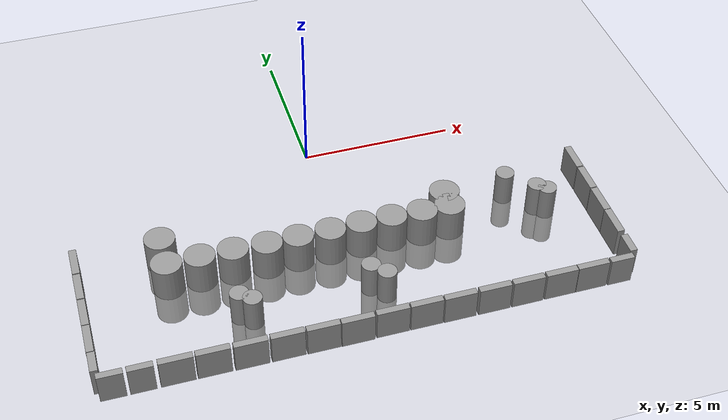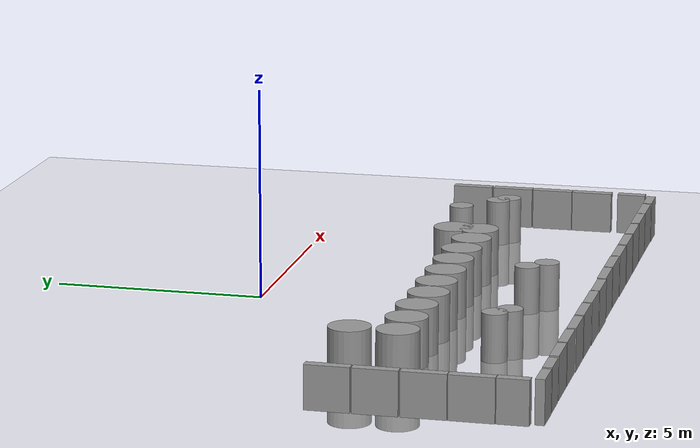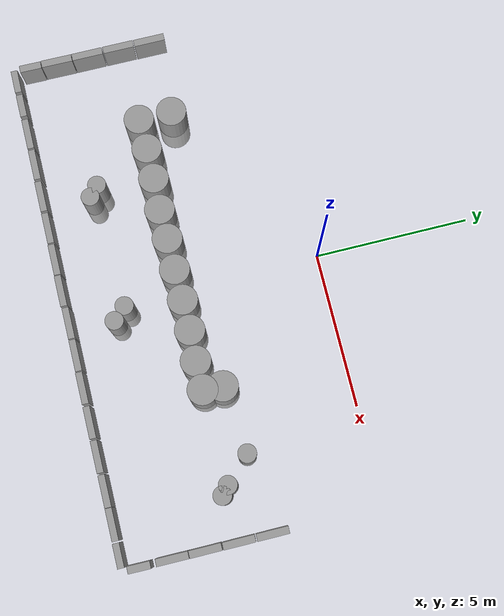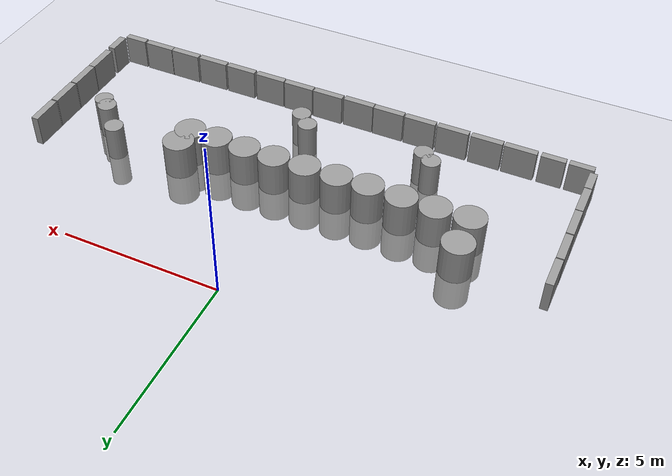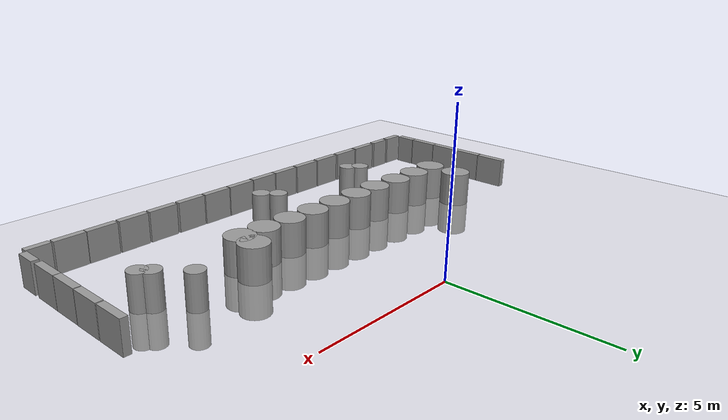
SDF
<sdf version="1.6">
 <world name="default">
  <model name="ground_plane">
   <static>1</static>
   <static>1</static>
   <link name="link">
    <collision name="collision">
     <geometry><plane><normal>0 0 1</normal><size>100 100</size></plane></geometry>
     <surface><friction><ode><mu>100</mu><mu2>50</mu2></ode></friction></surface>
    </collision>
    <visual name="visual">
     <cast_shadows>0</cast_shadows>
     <geometry><plane><normal>0 0 1</normal><size>100 100</size></plane></geometry>
     <material>
      <script><uri>file://media/materials/scripts/gazebo.material</uri><name>Gazebo/Grey</name></script>
     </material>
    </visual>
   </link>
  </model>
  <model name="unit_box_0_clone_10">
   <pose>8.12331 -3.52224 0.5 0 -0 0.000152</pose>
   <link name="link">
    <inertial>
     <mass>1</mass>
     <inertia>
      <ixx>0.166667</ixx>
      <ixy>0</ixy>
      <ixz>0</ixz>
      <iyy>0.166667</iyy>
      <iyz>0</iyz>
      <izz>0.166667</izz>
     </inertia>
    </inertial>
    <collision name="collision"><geometry><box><size>0.230819 1 1</size></box></geometry></collision>
    <visual name="visual">
     <geometry><box><size>0.230819 1 1</size></box></geometry>
     <material>
      <script><name>Gazebo/Grey</name><uri>file://media/materials/scripts/gazebo.material</uri></script>
     </material>
    </visual>
   </link>
  </model>
  <model name="unit_box_0_clone_11">
   <pose>8.1233 -4.56317 0.5 0 -0 0.000152</pose>
   <link name="link">
    <inertial>
     <mass>1</mass>
     <inertia>
      <ixx>0.166667</ixx>
      <ixy>0</ixy>
      <ixz>0</ixz>
      <iyy>0.166667</iyy>
      <iyz>0</iyz>
      <izz>0.166667</izz>
     </inertia>
    </inertial>
    <collision name="collision"><geometry><box><size>0.230819 1 1</size></box></geometry></collision>
    <visual name="visual">
     <geometry><box><size>0.230819 1 1</size></box></geometry>
     <material>
      <script><name>Gazebo/Grey</name><uri>file://media/materials/scripts/gazebo.material</uri></script>
     </material>
    </visual>
   </link>
  </model>
  <model name="unit_box_0_clone_12">
   <pose>8.11815 -5.59379 0.5 0 -0 0.000152</pose>
   <link name="link">
    <inertial>
     <mass>1</mass>
     <inertia>
      <ixx>0.166667</ixx>
      <ixy>0</ixy>
      <ixz>0</ixz>
      <iyy>0.166667</iyy>
      <iyz>0</iyz>
      <izz>0.166667</izz>
     </inertia>
    </inertial>
    <collision name="collision"><geometry><box><size>0.230819 1 1</size></box></geometry></collision>
    <visual name="visual">
     <geometry><box><size>0.230819 1 1</size></box></geometry>
     <material>
      <script><name>Gazebo/Grey</name><uri>file://media/materials/scripts/gazebo.material</uri></script>
     </material>
    </visual>
   </link>
  </model>
  <model name="unit_box_0_clone_13">
   <pose>8.11333 -6.60775 0.5 1e-06 -1e-06 -0.005519</pose>
   <link name="link">
    <inertial>
     <mass>1</mass>
     <inertia>
      <ixx>0.166667</ixx>
      <ixy>0</ixy>
      <ixz>0</ixz>
      <iyy>0.166667</iyy>
      <iyz>0</iyz>
      <izz>0.166667</izz>
     </inertia>
    </inertial>
    <collision name="collision"><geometry><box><size>0.230819 1 1</size></box></geometry></collision>
    <visual name="visual">
     <geometry><box><size>0.230819 1 1</size></box></geometry>
     <material>
      <script><name>Gazebo/Grey</name><uri>file://media/materials/scripts/gazebo.material</uri></script>
     </material>
    </visual>
   </link>
  </model>
  <model name="unit_box_clone_15_clone_0">
   <pose>6.71207 -8.13122 0.499998 0 5e-06 0.000244</pose>
   <link name="link">
    <inertial>
     <mass>1</mass>
     <inertia>
      <ixx>0.166667</ixx>
      <ixy>0</ixy>
      <ixz>0</ixz>
      <iyy>0.166667</iyy>
      <iyz>0</iyz>
      <izz>0.166667</izz>
     </inertia>
    </inertial>
    <collision name="collision"><geometry><box><size>1 0.210541 1</size></box></geometry></collision>
    <visual name="visual">
     <geometry><box><size>1 0.210541 1</size></box></geometry>
     <material>
      <script><name>Gazebo/Grey</name><uri>file://media/materials/scripts/gazebo.material</uri></script>
     </material>
    </visual>
   </link>
  </model>
  <model name="unit_box_clone_15_clone_1">
   <pose>5.69715 -8.13121 0.499998 0 5e-06 0.000244</pose>
   <link name="link">
    <inertial>
     <mass>1</mass>
     <inertia>
      <ixx>0.166667</ixx>
      <ixy>0</ixy>
      <ixz>0</ixz>
      <iyy>0.166667</iyy>
      <iyz>0</iyz>
      <izz>0.166667</izz>
     </inertia>
    </inertial>
    <collision name="collision"><geometry><box><size>1 0.210541 1</size></box></geometry></collision>
    <visual name="visual">
     <geometry><box><size>1 0.210541 1</size></box></geometry>
     <material>
      <script><name>Gazebo/Grey</name><uri>file://media/materials/scripts/gazebo.material</uri></script>
     </material>
    </visual>
   </link>
  </model>
  <model name="unit_box_clone_15_clone_2">
   <pose>4.63881 -8.13739 0.499998 0 5e-06 0.000244</pose>
   <link name="link">
    <inertial>
     <mass>1</mass>
     <inertia>
      <ixx>0.166667</ixx>
      <ixy>0</ixy>
      <ixz>0</ixz>
      <iyy>0.166667</iyy>
      <iyz>0</iyz>
      <izz>0.166667</izz>
     </inertia>
    </inertial>
    <collision name="collision"><geometry><box><size>1 0.210541 1</size></box></geometry></collision>
    <visual name="visual">
     <geometry><box><size>1 0.210541 1</size></box></geometry>
     <material>
      <script><name>Gazebo/Grey</name><uri>file://media/materials/scripts/gazebo.material</uri></script>
     </material>
    </visual>
   </link>
  </model>
  <model name="unit_box_clone_15_clone_3">
   <pose>3.57975 -8.13739 0.499998 0 5e-06 0.000244</pose>
   <link name="link">
    <inertial>
     <mass>1</mass>
     <inertia>
      <ixx>0.166667</ixx>
      <ixy>0</ixy>
      <ixz>0</ixz>
      <iyy>0.166667</iyy>
      <iyz>0</iyz>
      <izz>0.166667</izz>
     </inertia>
    </inertial>
    <collision name="collision"><geometry><box><size>1 0.210541 1</size></box></geometry></collision>
    <visual name="visual">
     <geometry><box><size>1 0.210541 1</size></box></geometry>
     <material>
      <script><name>Gazebo/Grey</name><uri>file://media/materials/scripts/gazebo.material</uri></script>
     </material>
    </visual>
   </link>
  </model>
  <model name="unit_box_clone_15_clone_4">
   <pose>2.49815 -8.13738 0.499998 0 5e-06 0.000244</pose>
   <link name="link">
    <inertial>
     <mass>1</mass>
     <inertia>
      <ixx>0.166667</ixx>
      <ixy>0</ixy>
      <ixz>0</ixz>
      <iyy>0.166667</iyy>
      <iyz>0</iyz>
      <izz>0.166667</izz>
     </inertia>
    </inertial>
    <collision name="collision"><geometry><box><size>1 0.210541 1</size></box></geometry></collision>
    <visual name="visual">
     <geometry><box><size>1 0.210541 1</size></box></geometry>
     <material>
      <script><name>Gazebo/Grey</name><uri>file://media/materials/scripts/gazebo.material</uri></script>
     </material>
    </visual>
   </link>
  </model>
  <model name="unit_box_clone_15_clone_5">
   <pose>1.46162 -8.12611 0.499998 0 5e-06 0.000244</pose>
   <link name="link">
    <inertial>
     <mass>1</mass>
     <inertia>
      <ixx>0.166667</ixx>
      <ixy>0</ixy>
      <ixz>0</ixz>
      <iyy>0.166667</iyy>
      <iyz>0</iyz>
      <izz>0.166667</izz>
     </inertia>
    </inertial>
    <collision name="collision"><geometry><box><size>1 0.210541 1</size></box></geometry></collision>
    <visual name="visual">
     <geometry><box><size>1 0.210541 1</size></box></geometry>
     <material>
      <script><name>Gazebo/Grey</name><uri>file://media/materials/scripts/gazebo.material</uri></script>
     </material>
    </visual>
   </link>
  </model>
  <model name="unit_box_clone_15_clone_6">
   <pose>0.425094 -8.1261 0.499998 0 5e-06 0.000244</pose>
   <link name="link">
    <inertial>
     <mass>1</mass>
     <inertia>
      <ixx>0.166667</ixx>
      <ixy>0</ixy>
      <ixz>0</ixz>
      <iyy>0.166667</iyy>
      <iyz>0</iyz>
      <izz>0.166667</izz>
     </inertia>
    </inertial>
    <collision name="collision"><geometry><box><size>1 0.210541 1</size></box></geometry></collision>
    <visual name="visual">
     <geometry><box><size>1 0.210541 1</size></box></geometry>
     <material>
      <script><name>Gazebo/Grey</name><uri>file://media/materials/scripts/gazebo.material</uri></script>
     </material>
    </visual>
   </link>
  </model>
  <model name="unit_box_clone_15_clone_7">
   <pose>-0.633968 -8.14865 0.499998 0 5e-06 0.000244</pose>
   <link name="link">
    <inertial>
     <mass>1</mass>
     <inertia>
      <ixx>0.166667</ixx>
      <ixy>0</ixy>
      <ixz>0</ixz>
      <iyy>0.166667</iyy>
      <iyz>0</iyz>
      <izz>0.166667</izz>
     </inertia>
    </inertial>
    <collision name="collision"><geometry><box><size>1 0.210541 1</size></box></geometry></collision>
    <visual name="visual">
     <geometry><box><size>1 0.210541 1</size></box></geometry>
     <material>
      <script><name>Gazebo/Grey</name><uri>file://media/materials/scripts/gazebo.material</uri></script>
     </material>
    </visual>
   </link>
  </model>
  <model name="unit_box_clone_15_clone_8">
   <pose>-1.65923 -8.13737 0.499998 0 5e-06 0.000244</pose>
   <link name="link">
    <inertial>
     <mass>1</mass>
     <inertia>
      <ixx>0.166667</ixx>
      <ixy>0</ixy>
      <ixz>0</ixz>
      <iyy>0.166667</iyy>
      <iyz>0</iyz>
      <izz>0.166667</izz>
     </inertia>
    </inertial>
    <collision name="collision"><geometry><box><size>1 0.210541 1</size></box></geometry></collision>
    <visual name="visual">
     <geometry><box><size>1 0.210541 1</size></box></geometry>
     <material>
      <script><name>Gazebo/Grey</name><uri>file://media/materials/scripts/gazebo.material</uri></script>
     </material>
    </visual>
   </link>
  </model>
  <model name="unit_box_clone_15_clone_9">
   <pose>-2.70703 -8.12612 0.499998 0 5e-06 0.000244</pose>
   <link name="link">
    <inertial>
     <mass>1</mass>
     <inertia>
      <ixx>0.166667</ixx>
      <ixy>0</ixy>
      <ixz>0</ixz>
      <iyy>0.166667</iyy>
      <iyz>0</iyz>
      <izz>0.166667</izz>
     </inertia>
    </inertial>
    <collision name="collision"><geometry><box><size>1 0.210541 1</size></box></geometry></collision>
    <visual name="visual">
     <geometry><box><size>1 0.210541 1</size></box></geometry>
     <material>
      <script><name>Gazebo/Grey</name><uri>file://media/materials/scripts/gazebo.material</uri></script>
     </material>
    </visual>
   </link>
  </model>
  <model name="unit_box_clone_15_clone_10">
   <pose>-3.77736 -8.12611 0.499998 0 5e-06 0.000244</pose>
   <link name="link">
    <inertial>
     <mass>1</mass>
     <inertia>
      <ixx>0.166667</ixx>
      <ixy>0</ixy>
      <ixz>0</ixz>
      <iyy>0.166667</iyy>
      <iyz>0</iyz>
      <izz>0.166667</izz>
     </inertia>
    </inertial>
    <collision name="collision"><geometry><box><size>1 0.210541 1</size></box></geometry></collision>
    <visual name="visual">
     <geometry><box><size>1 0.210541 1</size></box></geometry>
     <material>
      <script><name>Gazebo/Grey</name><uri>file://media/materials/scripts/gazebo.material</uri></script>
     </material>
    </visual>
   </link>
  </model>
  <model name="unit_box_clone_15_clone_11">
   <pose>-4.85896 -8.11485 0.499998 0 5e-06 0.000244</pose>
   <link name="link">
    <inertial>
     <mass>1</mass>
     <inertia>
      <ixx>0.166667</ixx>
      <ixy>0</ixy>
      <ixz>0</ixz>
      <iyy>0.166667</iyy>
      <iyz>0</iyz>
      <izz>0.166667</izz>
     </inertia>
    </inertial>
    <collision name="collision"><geometry><box><size>1 0.210541 1</size></box></geometry></collision>
    <visual name="visual">
     <geometry><box><size>1 0.210541 1</size></box></geometry>
     <material>
      <script><name>Gazebo/Grey</name><uri>file://media/materials/scripts/gazebo.material</uri></script>
     </material>
    </visual>
   </link>
  </model>
  <model name="unit_box_clone_15_clone_12">
   <pose>-5.91802 -8.11484 0.499998 0 5e-06 0.000244</pose>
   <link name="link">
    <inertial>
     <mass>1</mass>
     <inertia>
      <ixx>0.166667</ixx>
      <ixy>0</ixy>
      <ixz>0</ixz>
      <iyy>0.166667</iyy>
      <iyz>0</iyz>
      <izz>0.166667</izz>
     </inertia>
    </inertial>
    <collision name="collision"><geometry><box><size>1 0.210541 1</size></box></geometry></collision>
    <visual name="visual">
     <geometry><box><size>1 0.210541 1</size></box></geometry>
     <material>
      <script><name>Gazebo/Grey</name><uri>file://media/materials/scripts/gazebo.material</uri></script>
     </material>
    </visual>
   </link>
  </model>
  <model name="unit_box_0_clone_4_clone_10">
   <pose>-8.13285 -3.62431 0.5 0 -0 0.000152</pose>
   <link name="link">
    <inertial>
     <mass>1</mass>
     <inertia>
      <ixx>0.166667</ixx>
      <ixy>0</ixy>
      <ixz>0</ixz>
      <iyy>0.166667</iyy>
      <iyz>0</iyz>
      <izz>0.166667</izz>
     </inertia>
    </inertial>
    <collision name="collision"><geometry><box><size>0.230819 1 1</size></box></geometry></collision>
    <visual name="visual">
     <geometry><box><size>0.230819 1 1</size></box></geometry>
     <material>
      <script><name>Gazebo/Grey</name><uri>file://media/materials/scripts/gazebo.material</uri></script>
     </material>
    </visual>
   </link>
  </model>
  <model name="unit_box_0_clone_4_clone_11">
   <pose>-8.1396 -4.65748 0.5 0 -0 0.000152</pose>
   <link name="link">
    <inertial>
     <mass>1</mass>
     <inertia>
      <ixx>0.166667</ixx>
      <ixy>0</ixy>
      <ixz>0</ixz>
      <iyy>0.166667</iyy>
      <iyz>0</iyz>
      <izz>0.166667</izz>
     </inertia>
    </inertial>
    <collision name="collision"><geometry><box><size>0.230819 1 1</size></box></geometry></collision>
    <visual name="visual">
     <geometry><box><size>0.230819 1 1</size></box></geometry>
     <material>
      <script><name>Gazebo/Grey</name><uri>file://media/materials/scripts/gazebo.material</uri></script>
     </material>
    </visual>
   </link>
  </model>
  <model name="unit_box_0_clone_4_clone_12">
   <pose>-8.1396 -5.69065 0.5 0 -0 0.000152</pose>
   <link name="link">
    <inertial>
     <mass>1</mass>
     <inertia>
      <ixx>0.166667</ixx>
      <ixy>0</ixy>
      <ixz>0</ixz>
      <iyy>0.166667</iyy>
      <iyz>0</iyz>
      <izz>0.166667</izz>
     </inertia>
    </inertial>
    <collision name="collision"><geometry><box><size>0.230819 1 1</size></box></geometry></collision>
    <visual name="visual">
     <geometry><box><size>0.230819 1 1</size></box></geometry>
     <material>
      <script><name>Gazebo/Grey</name><uri>file://media/materials/scripts/gazebo.material</uri></script>
     </material>
    </visual>
   </link>
  </model>
  <model name="unit_box_0_clone_4_clone_13">
   <pose>-8.14113 -6.70873 0.5 -1e-06 1e-06 -0.009195</pose>
   <link name="link">
    <inertial>
     <mass>1</mass>
     <inertia>
      <ixx>0.166667</ixx>
      <ixy>0</ixy>
      <ixz>0</ixz>
      <iyy>0.166667</iyy>
      <iyz>0</iyz>
      <izz>0.166667</izz>
     </inertia>
    </inertial>
    <collision name="collision"><geometry><box><size>0.230819 1 1</size></box></geometry></collision>
    <visual name="visual">
     <geometry><box><size>0.230819 1 1</size></box></geometry>
     <material>
      <script><name>Gazebo/Grey</name><uri>file://media/materials/scripts/gazebo.material</uri></script>
     </material>
    </visual>
   </link>
  </model>
  <model name="unit_box_clone_11_clone_1_clone_0">
   <pose>-6.90881 -8.11956 0.499997 -3e-06 -8e-06 0.001349</pose>
   <link name="link">
    <inertial>
     <mass>1</mass>
     <inertia>
      <ixx>0.166667</ixx>
      <ixy>0</ixy>
      <ixz>0</ixz>
      <iyy>0.166667</iyy>
      <iyz>0</iyz>
      <izz>0.166667</izz>
     </inertia>
    </inertial>
    <collision name="collision"><geometry><box><size>0.750223 0.210541 1</size></box></geometry></collision>
    <visual name="visual">
     <geometry><box><size>0.750223 0.210541 1</size></box></geometry>
     <material>
      <script><name>Gazebo/Grey</name><uri>file://media/materials/scripts/gazebo.material</uri></script>
     </material>
    </visual>
   </link>
  </model>
  <model name="unit_box_0_clone_4_clone_13_clone_clone">
   <pose>-8.13833 -7.5766 0.499997 -6e-06 -2e-06 -0.011626</pose>
   <link name="link">
    <inertial>
     <mass>1</mass>
     <inertia>
      <ixx>0.166667</ixx>
      <ixy>0</ixy>
      <ixz>0</ixz>
      <iyy>0.166667</iyy>
      <iyz>0</iyz>
      <izz>0.166667</izz>
     </inertia>
    </inertial>
    <collision name="collision"><geometry><box><size>0.230819 0.700336 1</size></box></geometry></collision>
    <visual name="visual">
     <geometry><box><size>0.230819 0.700336 1</size></box></geometry>
     <material>
      <script><name>Gazebo/Grey</name><uri>file://media/materials/scripts/gazebo.material</uri></script>
     </material>
    </visual>
   </link>
  </model>
  <model name="unit_box_clone_11_clone_1_clone_0_clone">
   <pose>-7.75476 -8.122 0.499997 2e-06 -8e-06 -0.006025</pose>
   <link name="link">
    <inertial>
     <mass>1</mass>
     <inertia>
      <ixx>0.166667</ixx>
      <ixy>0</ixy>
      <ixz>0</ixz>
      <iyy>0.166667</iyy>
      <iyz>0</iyz>
      <izz>0.166667</izz>
     </inertia>
    </inertial>
    <collision name="collision"><geometry><box><size>0.750223 0.210541 1</size></box></geometry></collision>
    <visual name="visual">
     <geometry><box><size>0.750223 0.210541 1</size></box></geometry>
     <material>
      <script><name>Gazebo/Grey</name><uri>file://media/materials/scripts/gazebo.material</uri></script>
     </material>
    </visual>
   </link>
  </model>
  <model name="unit_box_clone_11_clone_1_clone_2">
   <pose>7.64249 -8.13927 0.499997 -2e-06 8e-06 0.00131</pose>
   <link name="link">
    <inertial>
     <mass>1</mass>
     <inertia>
      <ixx>0.166667</ixx>
      <ixy>0</ixy>
      <ixz>0</ixz>
      <iyy>0.166667</iyy>
      <iyz>0</iyz>
      <izz>0.166667</izz>
     </inertia>
    </inertial>
    <collision name="collision"><geometry><box><size>0.750223 0.210541 1</size></box></geometry></collision>
    <visual name="visual">
     <geometry><box><size>0.750223 0.210541 1</size></box></geometry>
     <material>
      <script><name>Gazebo/Grey</name><uri>file://media/materials/scripts/gazebo.material</uri></script>
     </material>
    </visual>
   </link>
  </model>
  <model name="unit_box_0_clone_4_clone_13_clone_clone_clone">
   <pose>8.11857 -7.62156 0.5 0 -1e-06 -0.010264</pose>
   <link name="link">
    <inertial>
     <mass>1</mass>
     <inertia>
      <ixx>0.166667</ixx>
      <ixy>0</ixy>
      <ixz>0</ixz>
      <iyy>0.166667</iyy>
      <iyz>0</iyz>
      <izz>0.166667</izz>
     </inertia>
    </inertial>
    <collision name="collision"><geometry><box><size>0.230819 0.700336 1</size></box></geometry></collision>
    <visual name="visual">
     <geometry><box><size>0.230819 0.700336 1</size></box></geometry>
     <material>
      <script><name>Gazebo/Grey</name><uri>file://media/materials/scripts/gazebo.material</uri></script>
     </material>
    </visual>
   </link>
  </model>
  <model name="unit_cylinder_153_clone_clone_5_clone_clone_13_clone_0_clone_29_clone_32_clone_0_clone_4_clone_46_clone_42_clone_clone_clone_4_clone">
   <static>1</static>
   <pose>6.67507 -4.71981 0 0 -0 0</pose>
   <link name="link">
    <inertial>
     <mass>1</mass>
     <inertia><ixx>0.145833</ixx><ixy>0</ixy><ixz>0</ixz><iyy>0.145833</iyy><iyz>0</iyz><izz>0.125</izz></inertia>
    </inertial>
    <collision name="collision">
     <geometry><cylinder><radius>0.295479</radius><length>2.18667</length></cylinder></geometry>
    </collision>
    <visual name="visual">
     <geometry><cylinder><radius>0.295479</radius><length>2.18667</length></cylinder></geometry>
     <material>
      <script><name>Gazebo/Grey</name><uri>file://media/materials/scripts/gazebo.material</uri></script>
     </material>
    </visual>
   </link>
  </model>
  <model name="unit_cylinder_153_clone_clone_5_clone_clone_13_clone_0_clone_29_clone_32_clone_0_clone_4_clone_46_clone_42_clone_clone_clone_4_clone_0">
   <static>1</static>
   <pose>6.41207 -4.48776 0 0 -0 0</pose>
   <link name="link">
    <inertial>
     <mass>1</mass>
     <inertia><ixx>0.145833</ixx><ixy>0</ixy><ixz>0</ixz><iyy>0.145833</iyy><iyz>0</iyz><izz>0.125</izz></inertia>
    </inertial>
    <collision name="collision">
     <geometry><cylinder><radius>0.295479</radius><length>2.18667</length></cylinder></geometry>
    </collision>
    <visual name="visual">
     <geometry><cylinder><radius>0.295479</radius><length>2.18667</length></cylinder></geometry>
     <material>
      <script><name>Gazebo/Grey</name><uri>file://media/materials/scripts/gazebo.material</uri></script>
     </material>
    </visual>
   </link>
  </model>
  <model name="unit_cylinder_153_clone_clone_5_clone_clone_13_clone_0_clone_29_clone_32_clone_0_clone_4_clone_46_clone_42_clone_clone_clone_4_clone_1">
   <static>1</static>
   <pose>5.63854 -3.69876 0 0 -0 0</pose>
   <link name="link">
    <inertial>
     <mass>1</mass>
     <inertia><ixx>0.145833</ixx><ixy>0</ixy><ixz>0</ixz><iyy>0.145833</iyy><iyz>0</iyz><izz>0.125</izz></inertia>
    </inertial>
    <collision name="collision">
     <geometry><cylinder><radius>0.295479</radius><length>2.18667</length></cylinder></geometry>
    </collision>
    <visual name="visual">
     <geometry><cylinder><radius>0.295479</radius><length>2.18667</length></cylinder></geometry>
     <material>
      <script><name>Gazebo/Grey</name><uri>file://media/materials/scripts/gazebo.material</uri></script>
     </material>
    </visual>
   </link>
  </model>
  <model name="unit_cylinder_153_clone_clone_5_clone_clone_13_clone_0_clone_29_clone_32_clone_0_clone_4_clone_46_clone_42_clone_clone_clone_3_clone_10">
   <static>1</static>
   <pose>-0.429072 -4.54374 0 0 -0 0</pose>
   <link name="link">
    <inertial>
     <mass>1</mass>
     <inertia><ixx>0.145833</ixx><ixy>0</ixy><ixz>0</ixz><iyy>0.145833</iyy><iyz>0</iyz><izz>0.125</izz></inertia>
    </inertial>
    <collision name="collision">
     <geometry><cylinder><radius>0.484115</radius><length>2.18667</length></cylinder></geometry>
    </collision>
    <visual name="visual">
     <geometry><cylinder><radius>0.484115</radius><length>2.18667</length></cylinder></geometry>
     <material>
      <script><name>Gazebo/Grey</name><uri>file://media/materials/scripts/gazebo.material</uri></script>
     </material>
    </visual>
   </link>
  </model>
  <model name="unit_cylinder_153_clone_clone_5_clone_clone_13_clone_0_clone_29_clone_32_clone_0_clone_4_clone_46_clone_42_clone_clone_clone_3_clone_11">
   <static>1</static>
   <pose>0.571789 -4.52199 0 0 -0 0</pose>
   <link name="link">
    <inertial>
     <mass>1</mass>
     <inertia><ixx>0.145833</ixx><ixy>0</ixy><ixz>0</ixz><iyy>0.145833</iyy><iyz>0</iyz><izz>0.125</izz></inertia>
    </inertial>
    <collision name="collision">
     <geometry><cylinder><radius>0.484115</radius><length>2.18667</length></cylinder></geometry>
    </collision>
    <visual name="visual">
     <geometry><cylinder><radius>0.484115</radius><length>2.18667</length></cylinder></geometry>
     <material>
      <script><name>Gazebo/Grey</name><uri>file://media/materials/scripts/gazebo.material</uri></script>
     </material>
    </visual>
   </link>
  </model>
  <model name="unit_cylinder_153_clone_clone_5_clone_clone_13_clone_0_clone_29_clone_32_clone_0_clone_4_clone_46_clone_42_clone_clone_clone_3_clone_12">
   <static>1</static>
   <pose>1.55089 -4.522 0 0 -0 0</pose>
   <link name="link">
    <inertial>
     <mass>1</mass>
     <inertia><ixx>0.145833</ixx><ixy>0</ixy><ixz>0</ixz><iyy>0.145833</iyy><iyz>0</iyz><izz>0.125</izz></inertia>
    </inertial>
    <collision name="collision">
     <geometry><cylinder><radius>0.484115</radius><length>2.18667</length></cylinder></geometry>
    </collision>
    <visual name="visual">
     <geometry><cylinder><radius>0.484115</radius><length>2.18667</length></cylinder></geometry>
     <material>
      <script><name>Gazebo/Grey</name><uri>file://media/materials/scripts/gazebo.material</uri></script>
     </material>
    </visual>
   </link>
  </model>
  <model name="unit_cylinder_153_clone_clone_5_clone_clone_13_clone_0_clone_29_clone_32_clone_0_clone_4_clone_46_clone_42_clone_clone_clone_3_clone_13">
   <static>1</static>
   <pose>2.52999 -4.56552 0 0 -0 0</pose>
   <link name="link">
    <inertial>
     <mass>1</mass>
     <inertia><ixx>0.145833</ixx><ixy>0</ixy><ixz>0</ixz><iyy>0.145833</iyy><iyz>0</iyz><izz>0.125</izz></inertia>
    </inertial>
    <collision name="collision">
     <geometry><cylinder><radius>0.484115</radius><length>2.18667</length></cylinder></geometry>
    </collision>
    <visual name="visual">
     <geometry><cylinder><radius>0.484115</radius><length>2.18667</length></cylinder></geometry>
     <material>
      <script><name>Gazebo/Grey</name><uri>file://media/materials/scripts/gazebo.material</uri></script>
     </material>
    </visual>
   </link>
  </model>
  <model name="unit_cylinder_153_clone_clone_5_clone_clone_13_clone_0_clone_29_clone_32_clone_0_clone_4_clone_46_clone_42_clone_clone_clone_3_clone_14">
   <static>1</static>
   <pose>3.44382 -4.56552 0 0 -0 0</pose>
   <link name="link">
    <inertial>
     <mass>1</mass>
     <inertia><ixx>0.145833</ixx><ixy>0</ixy><ixz>0</ixz><iyy>0.145833</iyy><iyz>0</iyz><izz>0.125</izz></inertia>
    </inertial>
    <collision name="collision">
     <geometry><cylinder><radius>0.484115</radius><length>2.18667</length></cylinder></geometry>
    </collision>
    <visual name="visual">
     <geometry><cylinder><radius>0.484115</radius><length>2.18667</length></cylinder></geometry>
     <material>
      <script><name>Gazebo/Grey</name><uri>file://media/materials/scripts/gazebo.material</uri></script>
     </material>
    </visual>
   </link>
  </model>
  <model name="unit_cylinder_153_clone_clone_5_clone_clone_13_clone_0_clone_29_clone_32_clone_0_clone_4_clone_46_clone_42_clone_clone_clone_3_clone_15">
   <static>1</static>
   <pose>-1.45169 -4.54374 0 0 -0 0</pose>
   <link name="link">
    <inertial>
     <mass>1</mass>
     <inertia><ixx>0.145833</ixx><ixy>0</ixy><ixz>0</ixz><iyy>0.145833</iyy><iyz>0</iyz><izz>0.125</izz></inertia>
    </inertial>
    <collision name="collision">
     <geometry><cylinder><radius>0.484115</radius><length>2.18667</length></cylinder></geometry>
    </collision>
    <visual name="visual">
     <geometry><cylinder><radius>0.484115</radius><length>2.18667</length></cylinder></geometry>
     <material>
      <script><name>Gazebo/Grey</name><uri>file://media/materials/scripts/gazebo.material</uri></script>
     </material>
    </visual>
   </link>
  </model>
  <model name="unit_cylinder_153_clone_clone_5_clone_clone_13_clone_0_clone_29_clone_32_clone_0_clone_4_clone_46_clone_42_clone_clone_clone_3_clone_16">
   <static>1</static>
   <pose>-2.43079 -4.56549 0 0 -0 0</pose>
   <link name="link">
    <inertial>
     <mass>1</mass>
     <inertia><ixx>0.145833</ixx><ixy>0</ixy><ixz>0</ixz><iyy>0.145833</iyy><iyz>0</iyz><izz>0.125</izz></inertia>
    </inertial>
    <collision name="collision">
     <geometry><cylinder><radius>0.484115</radius><length>2.18667</length></cylinder></geometry>
    </collision>
    <visual name="visual">
     <geometry><cylinder><radius>0.484115</radius><length>2.18667</length></cylinder></geometry>
     <material>
      <script><name>Gazebo/Grey</name><uri>file://media/materials/scripts/gazebo.material</uri></script>
     </material>
    </visual>
   </link>
  </model>
  <model name="unit_cylinder_153_clone_clone_5_clone_clone_13_clone_0_clone_29_clone_32_clone_0_clone_4_clone_46_clone_42_clone_clone_clone_3_clone_17">
   <static>1</static>
   <pose>-3.47517 -4.52197 0 0 -0 0</pose>
   <link name="link">
    <inertial>
     <mass>1</mass>
     <inertia><ixx>0.145833</ixx><ixy>0</ixy><ixz>0</ixz><iyy>0.145833</iyy><iyz>0</iyz><izz>0.125</izz></inertia>
    </inertial>
    <collision name="collision">
     <geometry><cylinder><radius>0.484115</radius><length>2.18667</length></cylinder></geometry>
    </collision>
    <visual name="visual">
     <geometry><cylinder><radius>0.484115</radius><length>2.18667</length></cylinder></geometry>
     <material>
      <script><name>Gazebo/Grey</name><uri>file://media/materials/scripts/gazebo.material</uri></script>
     </material>
    </visual>
   </link>
  </model>
  <model name="unit_cylinder_153_clone_clone_5_clone_clone_13_clone_0_clone_29_clone_32_clone_0_clone_4_clone_46_clone_42_clone_clone_clone_3_clone_18">
   <static>1</static>
   <pose>-4.49779 -4.51448 0 0 -0 0</pose>
   <link name="link">
    <inertial>
     <mass>1</mass>
     <inertia><ixx>0.145833</ixx><ixy>0</ixy><ixz>0</ixz><iyy>0.145833</iyy><iyz>0</iyz><izz>0.125</izz></inertia>
    </inertial>
    <collision name="collision">
     <geometry><cylinder><radius>0.484115</radius><length>2.18667</length></cylinder></geometry>
    </collision>
    <visual name="visual">
     <geometry><cylinder><radius>0.484115</radius><length>2.18667</length></cylinder></geometry>
     <material>
      <script><name>Gazebo/Grey</name><uri>file://media/materials/scripts/gazebo.material</uri></script>
     </material>
    </visual>
   </link>
  </model>
  <model name="unit_cylinder_153_clone_clone_5_clone_clone_13_clone_0_clone_29_clone_32_clone_0_clone_4_clone_46_clone_42_clone_clone_clone_3_clone_19">
   <static>1</static>
   <pose>-5.51133 -4.54302 0 0 -0 0</pose>
   <link name="link">
    <inertial>
     <mass>1</mass>
     <inertia><ixx>0.145833</ixx><ixy>0</ixy><ixz>0</ixz><iyy>0.145833</iyy><iyz>0</iyz><izz>0.125</izz></inertia>
    </inertial>
    <collision name="collision">
     <geometry><cylinder><radius>0.484115</radius><length>2.18667</length></cylinder></geometry>
    </collision>
    <visual name="visual">
     <geometry><cylinder><radius>0.484115</radius><length>2.18667</length></cylinder></geometry>
     <material>
      <script><name>Gazebo/Grey</name><uri>file://media/materials/scripts/gazebo.material</uri></script>
     </material>
    </visual>
   </link>
  </model>
  <model name="unit_cylinder_153_clone_clone_5_clone_clone_13_clone_0_clone_29_clone_32_clone_0_clone_4_clone_46_clone_42_clone_clone_clone_3_clone_20">
   <static>1</static>
   <pose>-5.5256 -3.47237 0 0 -0 0</pose>
   <link name="link">
    <inertial>
     <mass>1</mass>
     <inertia><ixx>0.145833</ixx><ixy>0</ixy><ixz>0</ixz><iyy>0.145833</iyy><iyz>0</iyz><izz>0.125</izz></inertia>
    </inertial>
    <collision name="collision">
     <geometry><cylinder><radius>0.484115</radius><length>2.18667</length></cylinder></geometry>
    </collision>
    <visual name="visual">
     <geometry><cylinder><radius>0.484115</radius><length>2.18667</length></cylinder></geometry>
     <material>
      <script><name>Gazebo/Grey</name><uri>file://media/materials/scripts/gazebo.material</uri></script>
     </material>
    </visual>
   </link>
  </model>
  <model name="unit_cylinder_153_clone_clone_5_clone_clone_13_clone_0_clone_29_clone_32_clone_0_clone_4_clone_46_clone_42_clone_clone_clone_3_clone_43">
   <static>1</static>
   <pose>3.48504 -3.93389 0 0 -0 0</pose>
   <link name="link">
    <inertial>
     <mass>1</mass>
     <inertia><ixx>0.145833</ixx><ixy>0</ixy><ixz>0</ixz><iyy>0.145833</iyy><iyz>0</iyz><izz>0.125</izz></inertia>
    </inertial>
    <collision name="collision">
     <geometry><cylinder><radius>0.484115</radius><length>2.18667</length></cylinder></geometry>
    </collision>
    <visual name="visual">
     <geometry><cylinder><radius>0.484115</radius><length>2.18667</length></cylinder></geometry>
     <material>
      <script><name>Gazebo/Grey</name><uri>file://media/materials/scripts/gazebo.material</uri></script>
     </material>
    </visual>
   </link>
  </model>
  <model name="unit_cylinder_153_clone_clone_5_clone_clone_13_clone_0_clone_29_clone_32_clone_0_clone_4_clone_46_clone_42_clone_clone_clone_4_clone_2_clone_11">
   <static>1</static>
   <pose>0.325788 -6.32093 0 0 -0 0</pose>
   <link name="link">
    <inertial>
     <mass>1</mass>
     <inertia><ixx>0.145833</ixx><ixy>0</ixy><ixz>0</ixz><iyy>0.145833</iyy><iyz>0</iyz><izz>0.125</izz></inertia>
    </inertial>
    <collision name="collision">
     <geometry><cylinder><radius>0.295479</radius><length>2.18667</length></cylinder></geometry>
    </collision>
    <visual name="visual">
     <geometry><cylinder><radius>0.295479</radius><length>2.18667</length></cylinder></geometry>
     <material>
      <script><name>Gazebo/Grey</name><uri>file://media/materials/scripts/gazebo.material</uri></script>
     </material>
    </visual>
   </link>
  </model>
  <model name="unit_cylinder_153_clone_clone_5_clone_clone_13_clone_0_clone_29_clone_32_clone_0_clone_4_clone_46_clone_42_clone_clone_clone_4_clone_2_clone_12">
   <static>1</static>
   <pose>0.709272 -6.72109 0 0 -0 0</pose>
   <link name="link">
    <inertial>
     <mass>1</mass>
     <inertia><ixx>0.145833</ixx><ixy>0</ixy><ixz>0</ixz><iyy>0.145833</iyy><iyz>0</iyz><izz>0.125</izz></inertia>
    </inertial>
    <collision name="collision">
     <geometry><cylinder><radius>0.295479</radius><length>2.18667</length></cylinder></geometry>
    </collision>
    <visual name="visual">
     <geometry><cylinder><radius>0.295479</radius><length>2.18667</length></cylinder></geometry>
     <material>
      <script><name>Gazebo/Grey</name><uri>file://media/materials/scripts/gazebo.material</uri></script>
     </material>
    </visual>
   </link>
  </model>
  <model name="unit_cylinder_153_clone_clone_5_clone_clone_13_clone_0_clone_29_clone_32_clone_0_clone_4_clone_46_clone_42_clone_clone_clone_4_clone_2_clone_13">
   <static>1</static>
   <pose>-3.69247 -6.3209 0 0 -0 0</pose>
   <link name="link">
    <inertial>
     <mass>1</mass>
     <inertia><ixx>0.145833</ixx><ixy>0</ixy><ixz>0</ixz><iyy>0.145833</iyy><iyz>0</iyz><izz>0.125</izz></inertia>
    </inertial>
    <collision name="collision">
     <geometry><cylinder><radius>0.295479</radius><length>2.18667</length></cylinder></geometry>
    </collision>
    <visual name="visual">
     <geometry><cylinder><radius>0.295479</radius><length>2.18667</length></cylinder></geometry>
     <material>
      <script><name>Gazebo/Grey</name><uri>file://media/materials/scripts/gazebo.material</uri></script>
     </material>
    </visual>
   </link>
  </model>
  <model name="unit_cylinder_153_clone_clone_5_clone_clone_13_clone_0_clone_29_clone_32_clone_0_clone_4_clone_46_clone_42_clone_clone_clone_4_clone_2_clone_14">
   <static>1</static>
   <pose>-3.35901 -6.60435 0 0 -0 0</pose>
   <link name="link">
    <inertial>
     <mass>1</mass>
     <inertia><ixx>0.145833</ixx><ixy>0</ixy><ixz>0</ixz><iyy>0.145833</iyy><iyz>0</iyz><izz>0.125</izz></inertia>
    </inertial>
    <collision name="collision">
     <geometry><cylinder><radius>0.295479</radius><length>2.18667</length></cylinder></geometry>
    </collision>
    <visual name="visual">
     <geometry><cylinder><radius>0.295479</radius><length>2.18667</length></cylinder></geometry>
     <material>
      <script><name>Gazebo/Grey</name><uri>file://media/materials/scripts/gazebo.material</uri></script>
     </material>
    </visual>
   </link>
  </model>
 </world>
</sdf>
